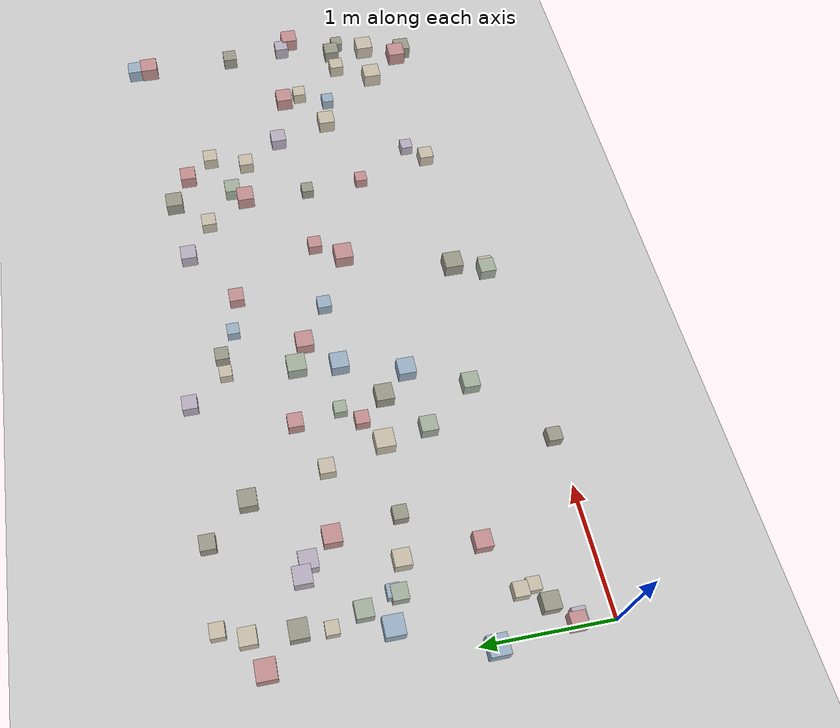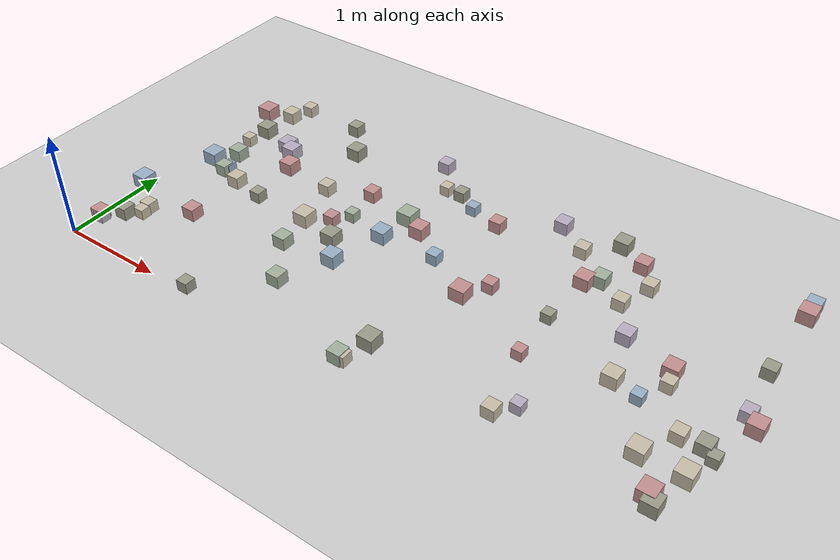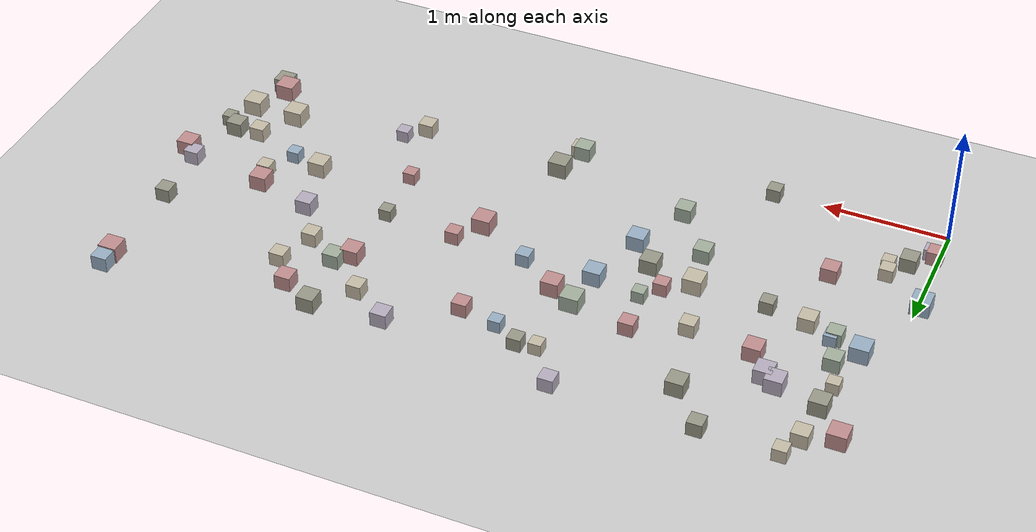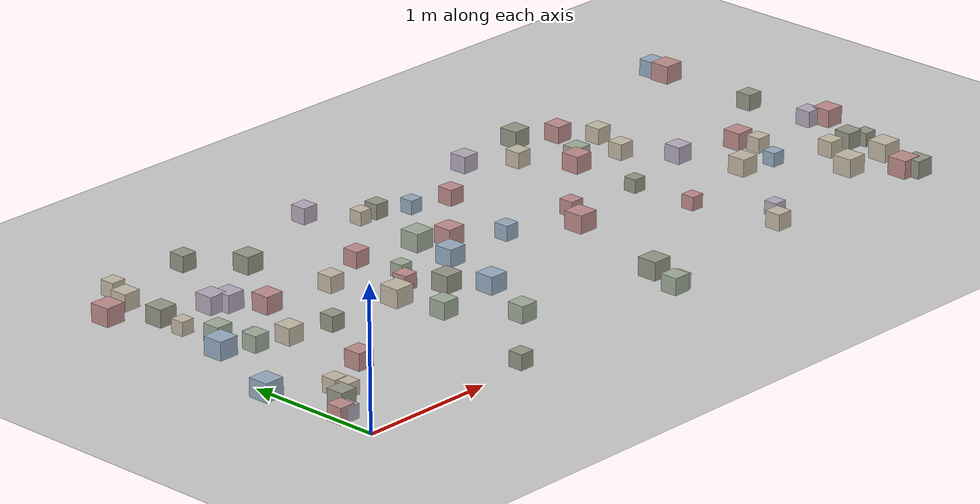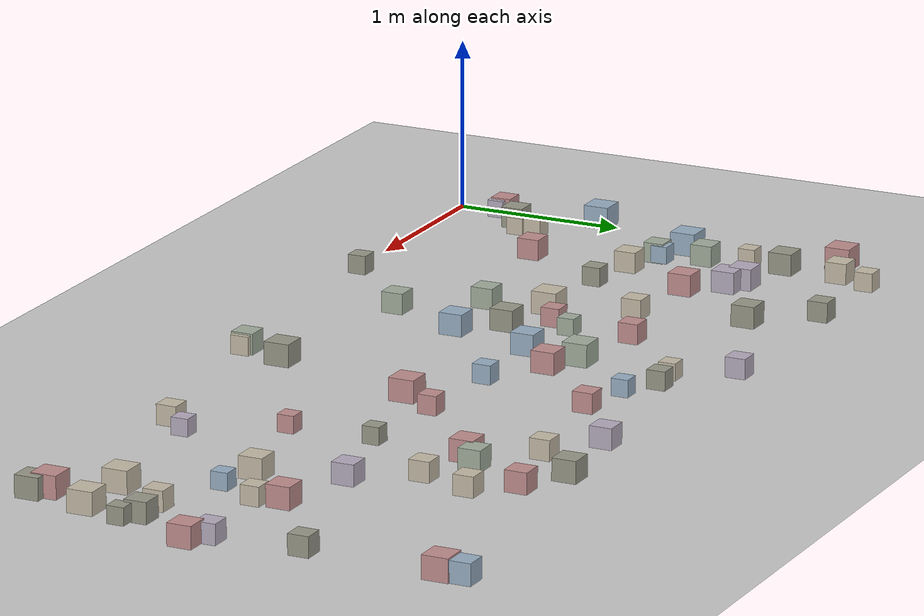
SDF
<sdf version="1.6">
 <world name="small_maze_world">
  <include><uri>model://ground_plane</uri></include>
  <include><uri>model://sun</uri></include>
  <model name="box_15">
   <static>false</static>
   <pose>1.01 1.33 0.05 0 0 0</pose>
   <link name="link">
    <inertial>
     <mass>0.2</mass>
     <inertia><ixx>0.001</ixx><iyy>0.001</iyy><izz>0.001</izz><ixy>0</ixy><ixz>0</ixz><iyz>0</iyz></inertia>
    </inertial>
    <collision name="collision"><geometry><box><size>0.11 0.11 0.11</size></box></geometry></collision>
    <visual name="visual">
     <geometry><box><size>0.11 0.11 0.11</size></box></geometry>
     <material><ambient>0.6 0.6 0.54 1</ambient><diffuse>0.6 0.6 0.54 1</diffuse></material>
    </visual>
   </link>
  </model>
  <model name="box_23">
   <static>false</static>
   <pose>5.8 1.43 0.05 0 0 0</pose>
   <link name="link">
    <inertial>
     <mass>0.2</mass>
     <inertia><ixx>0.001</ixx><iyy>0.001</iyy><izz>0.001</izz><ixy>0</ixy><ixz>0</ixz><iyz>0</iyz></inertia>
    </inertial>
    <collision name="collision"><geometry><box><size>0.12 0.12 0.12</size></box></geometry></collision>
    <visual name="visual">
     <geometry><box><size>0.12 0.12 0.12</size></box></geometry>
     <material><ambient>0.72 0.68 0.75 1</ambient><diffuse>0.72 0.68 0.75 1</diffuse></material>
    </visual>
   </link>
  </model>
  <model name="box_26">
   <static>false</static>
   <pose>0.79 2.05 0.05 0 0 0</pose>
   <link name="link">
    <inertial>
     <mass>0.2</mass>
     <inertia><ixx>0.001</ixx><iyy>0.001</iyy><izz>0.001</izz><ixy>0</ixy><ixz>0</ixz><iyz>0</iyz></inertia>
    </inertial>
    <collision name="collision"><geometry><box><size>0.14 0.14 0.14</size></box></geometry></collision>
    <visual name="visual">
     <geometry><box><size>0.14 0.14 0.14</size></box></geometry>
     <material><ambient>0.72 0.68 0.75 1</ambient><diffuse>0.72 0.68 0.75 1</diffuse></material>
    </visual>
   </link>
  </model>
  <model name="box_40">
   <static>false</static>
   <pose>3.47 1.52 0.05 0 0 0</pose>
   <link name="link">
    <inertial>
     <mass>0.2</mass>
     <inertia><ixx>0.001</ixx><iyy>0.001</iyy><izz>0.001</izz><ixy>0</ixy><ixz>0</ixz><iyz>0</iyz></inertia>
    </inertial>
    <collision name="collision"><geometry><box><size>0.11 0.11 0.11</size></box></geometry></collision>
    <visual name="visual">
     <geometry><box><size>0.11 0.11 0.11</size></box></geometry>
     <material><ambient>0.76 0.56 0.56 1</ambient><diffuse>0.76 0.56 0.56 1</diffuse></material>
    </visual>
   </link>
  </model>
  <model name="box_45">
   <static>false</static>
   <pose>1.32 2.41 0.05 0 0 0</pose>
   <link name="link">
    <inertial>
     <mass>0.2</mass>
     <inertia><ixx>0.001</ixx><iyy>0.001</iyy><izz>0.001</izz><ixy>0</ixy><ixz>0</ixz><iyz>0</iyz></inertia>
    </inertial>
    <collision name="collision"><geometry><box><size>0.14 0.14 0.14</size></box></geometry></collision>
    <visual name="visual">
     <geometry><box><size>0.14 0.14 0.14</size></box></geometry>
     <material><ambient>0.6 0.6 0.54 1</ambient><diffuse>0.6 0.6 0.54 1</diffuse></material>
    </visual>
   </link>
  </model>
  <model name="box_47">
   <static>false</static>
   <pose>0.35 2.55 0.05 0 0 0</pose>
   <link name="link">
    <inertial>
     <mass>0.2</mass>
     <inertia><ixx>0.001</ixx><iyy>0.001</iyy><izz>0.001</izz><ixy>0</ixy><ixz>0</ixz><iyz>0</iyz></inertia>
    </inertial>
    <collision name="collision"><geometry><box><size>0.13 0.13 0.13</size></box></geometry></collision>
    <visual name="visual">
     <geometry><box><size>0.13 0.13 0.13</size></box></geometry>
     <material><ambient>0.78 0.74 0.66 1</ambient><diffuse>0.78 0.74 0.66 1</diffuse></material>
    </visual>
   </link>
  </model>
  <model name="box_61">
   <static>false</static>
   <pose>5.53 0.35 0.05 0 0 0</pose>
   <link name="link">
    <inertial>
     <mass>0.2</mass>
     <inertia><ixx>0.001</ixx><iyy>0.001</iyy><izz>0.001</izz><ixy>0</ixy><ixz>0</ixz><iyz>0</iyz></inertia>
    </inertial>
    <collision name="collision"><geometry><box><size>0.15 0.15 0.15</size></box></geometry></collision>
    <visual name="visual">
     <geometry><box><size>0.15 0.15 0.15</size></box></geometry>
     <material><ambient>0.76 0.56 0.56 1</ambient><diffuse>0.76 0.56 0.56 1</diffuse></material>
    </visual>
   </link>
  </model>
  <model name="box_70">
   <static>false</static>
   <pose>1.97 1.24 0.05 0 0 0</pose>
   <link name="link">
    <inertial>
     <mass>0.2</mass>
     <inertia><ixx>0.001</ixx><iyy>0.001</iyy><izz>0.001</izz><ixy>0</ixy><ixz>0</ixz><iyz>0</iyz></inertia>
    </inertial>
    <collision name="collision"><geometry><box><size>0.14 0.14 0.14</size></box></geometry></collision>
    <visual name="visual">
     <geometry><box><size>0.14 0.14 0.14</size></box></geometry>
     <material><ambient>0.6 0.6 0.54 1</ambient><diffuse>0.6 0.6 0.54 1</diffuse></material>
    </visual>
   </link>
  </model>
  <model name="box_86">
   <static>false</static>
   <pose>1.87 1.96 0.05 0 0 0</pose>
   <link name="link">
    <inertial>
     <mass>0.2</mass>
     <inertia><ixx>0.001</ixx><iyy>0.001</iyy><izz>0.001</izz><ixy>0</ixy><ixz>0</ixz><iyz>0</iyz></inertia>
    </inertial>
    <collision name="collision"><geometry><box><size>0.12 0.12 0.12</size></box></geometry></collision>
    <visual name="visual">
     <geometry><box><size>0.12 0.12 0.12</size></box></geometry>
     <material><ambient>0.76 0.56 0.56 1</ambient><diffuse>0.76 0.56 0.56 1</diffuse></material>
    </visual>
   </link>
  </model>
  <model name="box_91">
   <static>false</static>
   <pose>1.65 0.96 0.05 0 0 0</pose>
   <link name="link">
    <inertial>
     <mass>0.2</mass>
     <inertia><ixx>0.001</ixx><iyy>0.001</iyy><izz>0.001</izz><ixy>0</ixy><ixz>0</ixz><iyz>0</iyz></inertia>
    </inertial>
    <collision name="collision"><geometry><box><size>0.13 0.13 0.13</size></box></geometry></collision>
    <visual name="visual">
     <geometry><box><size>0.13 0.13 0.13</size></box></geometry>
     <material><ambient>0.64 0.69 0.62 1</ambient><diffuse>0.64 0.69 0.62 1</diffuse></material>
    </visual>
   </link>
  </model>
  <model name="box_101">
   <static>false</static>
   <pose>0.3 1.97 0.05 0 0 0</pose>
   <link name="link">
    <inertial>
     <mass>0.2</mass>
     <inertia><ixx>0.001</ixx><iyy>0.001</iyy><izz>0.001</izz><ixy>0</ixy><ixz>0</ixz><iyz>0</iyz></inertia>
    </inertial>
    <collision name="collision"><geometry><box><size>0.1 0.1 0.1</size></box></geometry></collision>
    <visual name="visual">
     <geometry><box><size>0.1 0.1 0.1</size></box></geometry>
     <material><ambient>0.78 0.74 0.66 1</ambient><diffuse>0.78 0.74 0.66 1</diffuse></material>
    </visual>
   </link>
  </model>
  <model name="box_103">
   <static>false</static>
   <pose>4.08 2.03 0.05 0 0 0</pose>
   <link name="link">
    <inertial>
     <mass>0.2</mass>
     <inertia><ixx>0.001</ixx><iyy>0.001</iyy><izz>0.001</izz><ixy>0</ixy><ixz>0</ixz><iyz>0</iyz></inertia>
    </inertial>
    <collision name="collision"><geometry><box><size>0.14 0.14 0.14</size></box></geometry></collision>
    <visual name="visual">
     <geometry><box><size>0.14 0.14 0.14</size></box></geometry>
     <material><ambient>0.76 0.56 0.56 1</ambient><diffuse>0.76 0.56 0.56 1</diffuse></material>
    </visual>
   </link>
  </model>
  <model name="box_106">
   <static>false</static>
   <pose>3.0 0.14 0.05 0 0 0</pose>
   <link name="link">
    <inertial>
     <mass>0.2</mass>
     <inertia><ixx>0.001</ixx><iyy>0.001</iyy><izz>0.001</izz><ixy>0</ixy><ixz>0</ixz><iyz>0</iyz></inertia>
    </inertial>
    <collision name="collision"><geometry><box><size>0.11 0.11 0.11</size></box></geometry></collision>
    <visual name="visual">
     <geometry><box><size>0.11 0.11 0.11</size></box></geometry>
     <material><ambient>0.78 0.74 0.66 1</ambient><diffuse>0.78 0.74 0.66 1</diffuse></material>
    </visual>
   </link>
  </model>
  <model name="box_107">
   <static>false</static>
   <pose>2.35 1.87 0.05 0 0 0</pose>
   <link name="link">
    <inertial>
     <mass>0.2</mass>
     <inertia><ixx>0.001</ixx><iyy>0.001</iyy><izz>0.001</izz><ixy>0</ixy><ixz>0</ixz><iyz>0</iyz></inertia>
    </inertial>
    <collision name="collision"><geometry><box><size>0.15 0.15 0.15</size></box></geometry></collision>
    <visual name="visual">
     <geometry><box><size>0.15 0.15 0.15</size></box></geometry>
     <material><ambient>0.64 0.69 0.62 1</ambient><diffuse>0.64 0.69 0.62 1</diffuse></material>
    </visual>
   </link>
  </model>
  <model name="box_110">
   <static>false</static>
   <pose>0.94 1.85 0.05 0 0 0</pose>
   <link name="link">
    <inertial>
     <mass>0.2</mass>
     <inertia><ixx>0.001</ixx><iyy>0.001</iyy><izz>0.001</izz><ixy>0</ixy><ixz>0</ixz><iyz>0</iyz></inertia>
    </inertial>
    <collision name="collision"><geometry><box><size>0.14 0.14 0.14</size></box></geometry></collision>
    <visual name="visual">
     <geometry><box><size>0.14 0.14 0.14</size></box></geometry>
     <material><ambient>0.76 0.56 0.56 1</ambient><diffuse>0.76 0.56 0.56 1</diffuse></material>
    </visual>
   </link>
  </model>
  <model name="box_115">
   <static>false</static>
   <pose>0.38 1.73 0.05 0 0 0</pose>
   <link name="link">
    <inertial>
     <mass>0.2</mass>
     <inertia><ixx>0.001</ixx><iyy>0.001</iyy><izz>0.001</izz><ixy>0</ixy><ixz>0</ixz><iyz>0</iyz></inertia>
    </inertial>
    <collision name="collision"><geometry><box><size>0.13 0.13 0.13</size></box></geometry></collision>
    <visual name="visual">
     <geometry><box><size>0.13 0.13 0.13</size></box></geometry>
     <material><ambient>0.64 0.69 0.62 1</ambient><diffuse>0.64 0.69 0.62 1</diffuse></material>
    </visual>
   </link>
  </model>
  <model name="box_125">
   <static>false</static>
   <pose>5.3 0.64 0.05 0 0 0</pose>
   <link name="link">
    <inertial>
     <mass>0.2</mass>
     <inertia><ixx>0.001</ixx><iyy>0.001</iyy><izz>0.001</izz><ixy>0</ixy><ixz>0</ixz><iyz>0</iyz></inertia>
    </inertial>
    <collision name="collision"><geometry><box><size>0.15 0.15 0.15</size></box></geometry></collision>
    <visual name="visual">
     <geometry><box><size>0.15 0.15 0.15</size></box></geometry>
     <material><ambient>0.78 0.74 0.66 1</ambient><diffuse>0.78 0.74 0.66 1</diffuse></material>
    </visual>
   </link>
  </model>
  <model name="box_128">
   <static>false</static>
   <pose>1.39 0.04 0.05 0 0 0</pose>
   <link name="link">
    <inertial>
     <mass>0.2</mass>
     <inertia><ixx>0.001</ixx><iyy>0.001</iyy><izz>0.001</izz><ixy>0</ixy><ixz>0</ixz><iyz>0</iyz></inertia>
    </inertial>
    <collision name="collision"><geometry><box><size>0.11 0.11 0.11</size></box></geometry></collision>
    <visual name="visual">
     <geometry><box><size>0.11 0.11 0.11</size></box></geometry>
     <material><ambient>0.6 0.6 0.54 1</ambient><diffuse>0.6 0.6 0.54 1</diffuse></material>
    </visual>
   </link>
  </model>
  <model name="box_129">
   <static>false</static>
   <pose>5.19 1.36 0.05 0 0 0</pose>
   <link name="link">
    <inertial>
     <mass>0.2</mass>
     <inertia><ixx>0.001</ixx><iyy>0.001</iyy><izz>0.001</izz><ixy>0</ixy><ixz>0</ixz><iyz>0</iyz></inertia>
    </inertial>
    <collision name="collision"><geometry><box><size>0.11 0.11 0.11</size></box></geometry></collision>
    <visual name="visual">
     <geometry><box><size>0.11 0.11 0.11</size></box></geometry>
     <material><ambient>0.78 0.74 0.66 1</ambient><diffuse>0.78 0.74 0.66 1</diffuse></material>
    </visual>
   </link>
  </model>
  <model name="box_136">
   <static>false</static>
   <pose>5.77 2.72 0.05 0 0 0</pose>
   <link name="link">
    <inertial>
     <mass>0.2</mass>
     <inertia><ixx>0.001</ixx><iyy>0.001</iyy><izz>0.001</izz><ixy>0</ixy><ixz>0</ixz><iyz>0</iyz></inertia>
    </inertial>
    <collision name="collision"><geometry><box><size>0.15 0.15 0.15</size></box></geometry></collision>
    <visual name="visual">
     <geometry><box><size>0.15 0.15 0.15</size></box></geometry>
     <material><ambient>0.76 0.56 0.56 1</ambient><diffuse>0.76 0.56 0.56 1</diffuse></material>
    </visual>
   </link>
  </model>
  <model name="box_151">
   <static>false</static>
   <pose>1.92 1.6 0.05 0 0 0</pose>
   <link name="link">
    <inertial>
     <mass>0.2</mass>
     <inertia><ixx>0.001</ixx><iyy>0.001</iyy><izz>0.001</izz><ixy>0</ixy><ixz>0</ixz><iyz>0</iyz></inertia>
    </inertial>
    <collision name="collision"><geometry><box><size>0.1 0.1 0.1</size></box></geometry></collision>
    <visual name="visual">
     <geometry><box><size>0.1 0.1 0.1</size></box></geometry>
     <material><ambient>0.64 0.69 0.62 1</ambient><diffuse>0.64 0.69 0.62 1</diffuse></material>
    </visual>
   </link>
  </model>
  <model name="box_153">
   <static>false</static>
   <pose>0.7 0.79 0.05 0 0 0</pose>
   <link name="link">
    <inertial>
     <mass>0.2</mass>
     <inertia><ixx>0.001</ixx><iyy>0.001</iyy><izz>0.001</izz><ixy>0</ixy><ixz>0</ixz><iyz>0</iyz></inertia>
    </inertial>
    <collision name="collision"><geometry><box><size>0.13 0.13 0.13</size></box></geometry></collision>
    <visual name="visual">
     <geometry><box><size>0.13 0.13 0.13</size></box></geometry>
     <material><ambient>0.76 0.56 0.56 1</ambient><diffuse>0.76 0.56 0.56 1</diffuse></material>
    </visual>
   </link>
  </model>
  <model name="box_156">
   <static>false</static>
   <pose>2.16 1.02 0.05 0 0 0</pose>
   <link name="link">
    <inertial>
     <mass>0.2</mass>
     <inertia><ixx>0.001</ixx><iyy>0.001</iyy><izz>0.001</izz><ixy>0</ixy><ixz>0</ixz><iyz>0</iyz></inertia>
    </inertial>
    <collision name="collision"><geometry><box><size>0.14 0.14 0.14</size></box></geometry></collision>
    <visual name="visual">
     <geometry><box><size>0.14 0.14 0.14</size></box></geometry>
     <material><ambient>0.6 0.69 0.77 1</ambient><diffuse>0.6 0.69 0.77 1</diffuse></material>
    </visual>
   </link>
  </model>
  <model name="box_161">
   <static>false</static>
   <pose>3.32 1.3 0.05 0 0 0</pose>
   <link name="link">
    <inertial>
     <mass>0.2</mass>
     <inertia><ixx>0.001</ixx><iyy>0.001</iyy><izz>0.001</izz><ixy>0</ixy><ixz>0</ixz><iyz>0</iyz></inertia>
    </inertial>
    <collision name="collision"><geometry><box><size>0.15 0.15 0.15</size></box></geometry></collision>
    <visual name="visual">
     <geometry><box><size>0.15 0.15 0.15</size></box></geometry>
     <material><ambient>0.76 0.56 0.56 1</ambient><diffuse>0.76 0.56 0.56 1</diffuse></material>
    </visual>
   </link>
  </model>
  <model name="box_165">
   <static>false</static>
   <pose>-0.03 0.88 0.05 0 0 0</pose>
   <link name="link">
    <inertial>
     <mass>0.2</mass>
     <inertia><ixx>0.001</ixx><iyy>0.001</iyy><izz>0.001</izz><ixy>0</ixy><ixz>0</ixz><iyz>0</iyz></inertia>
    </inertial>
    <collision name="collision"><geometry><box><size>0.15 0.15 0.15</size></box></geometry></collision>
    <visual name="visual">
     <geometry><box><size>0.15 0.15 0.15</size></box></geometry>
     <material><ambient>0.6 0.69 0.77 1</ambient><diffuse>0.6 0.69 0.77 1</diffuse></material>
    </visual>
   </link>
  </model>
  <model name="box_184">
   <static>false</static>
   <pose>1.8 1.45 0.05 0 0 0</pose>
   <link name="link">
    <inertial>
     <mass>0.2</mass>
     <inertia><ixx>0.001</ixx><iyy>0.001</iyy><izz>0.001</izz><ixy>0</ixy><ixz>0</ixz><iyz>0</iyz></inertia>
    </inertial>
    <collision name="collision"><geometry><box><size>0.11 0.11 0.11</size></box></geometry></collision>
    <visual name="visual">
     <geometry><box><size>0.11 0.11 0.11</size></box></geometry>
     <material><ambient>0.76 0.56 0.56 1</ambient><diffuse>0.76 0.56 0.56 1</diffuse></material>
    </visual>
   </link>
  </model>
  <model name="box_195">
   <static>false</static>
   <pose>5.76 1.94 0.05 0 0 0</pose>
   <link name="link">
    <inertial>
     <mass>0.2</mass>
     <inertia><ixx>0.001</ixx><iyy>0.001</iyy><izz>0.001</izz><ixy>0</ixy><ixz>0</ixz><iyz>0</iyz></inertia>
    </inertial>
    <collision name="collision"><geometry><box><size>0.12 0.12 0.12</size></box></geometry></collision>
    <visual name="visual">
     <geometry><box><size>0.12 0.12 0.12</size></box></geometry>
     <material><ambient>0.6 0.6 0.54 1</ambient><diffuse>0.6 0.6 0.54 1</diffuse></material>
    </visual>
   </link>
  </model>
  <model name="box_198">
   <static>false</static>
   <pose>0.33 0.52 0.05 0 0 0</pose>
   <link name="link">
    <inertial>
     <mass>0.2</mass>
     <inertia><ixx>0.001</ixx><iyy>0.001</iyy><izz>0.001</izz><ixy>0</ixy><ixz>0</ixz><iyz>0</iyz></inertia>
    </inertial>
    <collision name="collision"><geometry><box><size>0.1 0.1 0.1</size></box></geometry></collision>
    <visual name="visual">
     <geometry><box><size>0.1 0.1 0.1</size></box></geometry>
     <material><ambient>0.78 0.74 0.66 1</ambient><diffuse>0.78 0.74 0.66 1</diffuse></material>
    </visual>
   </link>
  </model>
  <model name="box_199">
   <static>false</static>
   <pose>2.76 2.32 0.05 0 0 0</pose>
   <link name="link">
    <inertial>
     <mass>0.2</mass>
     <inertia><ixx>0.001</ixx><iyy>0.001</iyy><izz>0.001</izz><ixy>0</ixy><ixz>0</ixz><iyz>0</iyz></inertia>
    </inertial>
    <collision name="collision"><geometry><box><size>0.1 0.1 0.1</size></box></geometry></collision>
    <visual name="visual">
     <geometry><box><size>0.1 0.1 0.1</size></box></geometry>
     <material><ambient>0.6 0.69 0.77 1</ambient><diffuse>0.6 0.69 0.77 1</diffuse></material>
    </visual>
   </link>
  </model>
  <model name="box_200">
   <static>false</static>
   <pose>5.77 2.85 0.05 0 0 0</pose>
   <link name="link">
    <inertial>
     <mass>0.2</mass>
     <inertia><ixx>0.001</ixx><iyy>0.001</iyy><izz>0.001</izz><ixy>0</ixy><ixz>0</ixz><iyz>0</iyz></inertia>
    </inertial>
    <collision name="collision"><geometry><box><size>0.13 0.13 0.13</size></box></geometry></collision>
    <visual name="visual">
     <geometry><box><size>0.13 0.13 0.13</size></box></geometry>
     <material><ambient>0.6 0.69 0.77 1</ambient><diffuse>0.6 0.69 0.77 1</diffuse></material>
    </visual>
   </link>
  </model>
  <model name="box_201">
   <static>false</static>
   <pose>2.31 1.53 0.05 0 0 0</pose>
   <link name="link">
    <inertial>
     <mass>0.2</mass>
     <inertia><ixx>0.001</ixx><iyy>0.001</iyy><izz>0.001</izz><ixy>0</ixy><ixz>0</ixz><iyz>0</iyz></inertia>
    </inertial>
    <collision name="collision"><geometry><box><size>0.14 0.14 0.14</size></box></geometry></collision>
    <visual name="visual">
     <geometry><box><size>0.14 0.14 0.14</size></box></geometry>
     <material><ambient>0.6 0.69 0.77 1</ambient><diffuse>0.6 0.69 0.77 1</diffuse></material>
    </visual>
   </link>
  </model>
  <model name="box_209">
   <static>false</static>
   <pose>2.39 2.43 0.05 0 0 0</pose>
   <link name="link">
    <inertial>
     <mass>0.2</mass>
     <inertia><ixx>0.001</ixx><iyy>0.001</iyy><izz>0.001</izz><ixy>0</ixy><ixz>0</ixz><iyz>0</iyz></inertia>
    </inertial>
    <collision name="collision"><geometry><box><size>0.1 0.1 0.1</size></box></geometry></collision>
    <visual name="visual">
     <geometry><box><size>0.1 0.1 0.1</size></box></geometry>
     <material><ambient>0.78 0.74 0.66 1</ambient><diffuse>0.78 0.74 0.66 1</diffuse></material>
    </visual>
   </link>
  </model>
  <model name="box_212">
   <static>false</static>
   <pose>1.59 1.32 0.05 0 0 0</pose>
   <link name="link">
    <inertial>
     <mass>0.2</mass>
     <inertia><ixx>0.001</ixx><iyy>0.001</iyy><izz>0.001</izz><ixy>0</ixy><ixz>0</ixz><iyz>0</iyz></inertia>
    </inertial>
    <collision name="collision"><geometry><box><size>0.15 0.15 0.15</size></box></geometry></collision>
    <visual name="visual">
     <geometry><box><size>0.15 0.15 0.15</size></box></geometry>
     <material><ambient>0.78 0.74 0.66 1</ambient><diffuse>0.78 0.74 0.66 1</diffuse></material>
    </visual>
   </link>
  </model>
  <model name="box_213">
   <static>false</static>
   <pose>2.87 1.55 0.05 0 0 0</pose>
   <link name="link">
    <inertial>
     <mass>0.2</mass>
     <inertia><ixx>0.001</ixx><iyy>0.001</iyy><izz>0.001</izz><ixy>0</ixy><ixz>0</ixz><iyz>0</iyz></inertia>
    </inertial>
    <collision name="collision"><geometry><box><size>0.11 0.11 0.11</size></box></geometry></collision>
    <visual name="visual">
     <geometry><box><size>0.11 0.11 0.11</size></box></geometry>
     <material><ambient>0.6 0.69 0.77 1</ambient><diffuse>0.6 0.69 0.77 1</diffuse></material>
    </visual>
   </link>
  </model>
  <model name="box_214">
   <static>false</static>
   <pose>5.47 0.95 0.05 0 0 0</pose>
   <link name="link">
    <inertial>
     <mass>0.2</mass>
     <inertia><ixx>0.001</ixx><iyy>0.001</iyy><izz>0.001</izz><ixy>0</ixy><ixz>0</ixz><iyz>0</iyz></inertia>
    </inertial>
    <collision name="collision"><geometry><box><size>0.12 0.12 0.12</size></box></geometry></collision>
    <visual name="visual">
     <geometry><box><size>0.12 0.12 0.12</size></box></geometry>
     <material><ambient>0.78 0.74 0.66 1</ambient><diffuse>0.78 0.74 0.66 1</diffuse></material>
    </visual>
   </link>
  </model>
  <model name="box_217">
   <static>false</static>
   <pose>1.05 2.74 0.05 0 0 0</pose>
   <link name="link">
    <inertial>
     <mass>0.2</mass>
     <inertia><ixx>0.001</ixx><iyy>0.001</iyy><izz>0.001</izz><ixy>0</ixy><ixz>0</ixz><iyz>0</iyz></inertia>
    </inertial>
    <collision name="collision"><geometry><box><size>0.12 0.12 0.12</size></box></geometry></collision>
    <visual name="visual">
     <geometry><box><size>0.12 0.12 0.12</size></box></geometry>
     <material><ambient>0.6 0.6 0.54 1</ambient><diffuse>0.6 0.6 0.54 1</diffuse></material>
    </visual>
   </link>
  </model>
  <model name="box_221">
   <static>false</static>
   <pose>4.81 1.17 0.05 0 0 0</pose>
   <link name="link">
    <inertial>
     <mass>0.2</mass>
     <inertia><ixx>0.001</ixx><iyy>0.001</iyy><izz>0.001</izz><ixy>0</ixy><ixz>0</ixz><iyz>0</iyz></inertia>
    </inertial>
    <collision name="collision"><geometry><box><size>0.14 0.14 0.14</size></box></geometry></collision>
    <visual name="visual">
     <geometry><box><size>0.14 0.14 0.14</size></box></geometry>
     <material><ambient>0.78 0.74 0.66 1</ambient><diffuse>0.78 0.74 0.66 1</diffuse></material>
    </visual>
   </link>
  </model>
  <model name="box_232">
   <static>false</static>
   <pose>0.03 0.29 0.05 0 0 0</pose>
   <link name="link">
    <inertial>
     <mass>0.2</mass>
     <inertia><ixx>0.001</ixx><iyy>0.001</iyy><izz>0.001</izz><ixy>0</ixy><ixz>0</ixz><iyz>0</iyz></inertia>
    </inertial>
    <collision name="collision"><geometry><box><size>0.12 0.12 0.12</size></box></geometry></collision>
    <visual name="visual">
     <geometry><box><size>0.12 0.12 0.12</size></box></geometry>
     <material><ambient>0.76 0.56 0.56 1</ambient><diffuse>0.76 0.56 0.56 1</diffuse></material>
    </visual>
   </link>
  </model>
  <model name="box_234">
   <static>false</static>
   <pose>2.55 2.44 0.05 0 0 0</pose>
   <link name="link">
    <inertial>
     <mass>0.2</mass>
     <inertia><ixx>0.001</ixx><iyy>0.001</iyy><izz>0.001</izz><ixy>0</ixy><ixz>0</ixz><iyz>0</iyz></inertia>
    </inertial>
    <collision name="collision"><geometry><box><size>0.11 0.11 0.11</size></box></geometry></collision>
    <visual name="visual">
     <geometry><box><size>0.11 0.11 0.11</size></box></geometry>
     <material><ambient>0.6 0.6 0.54 1</ambient><diffuse>0.6 0.6 0.54 1</diffuse></material>
    </visual>
   </link>
  </model>
  <model name="box_249">
   <static>false</static>
   <pose>2.55 1.77 0.05 0 0 0</pose>
   <link name="link">
    <inertial>
     <mass>0.2</mass>
     <inertia><ixx>0.001</ixx><iyy>0.001</iyy><izz>0.001</izz><ixy>0</ixy><ixz>0</ixz><iyz>0</iyz></inertia>
    </inertial>
    <collision name="collision"><geometry><box><size>0.14 0.14 0.14</size></box></geometry></collision>
    <visual name="visual">
     <geometry><box><size>0.14 0.14 0.14</size></box></geometry>
     <material><ambient>0.76 0.56 0.56 1</ambient><diffuse>0.76 0.56 0.56 1</diffuse></material>
    </visual>
   </link>
  </model>
  <model name="box_268">
   <static>false</static>
   <pose>5.06 1.11 0.05 0 0 0</pose>
   <link name="link">
    <inertial>
     <mass>0.2</mass>
     <inertia><ixx>0.001</ixx><iyy>0.001</iyy><izz>0.001</izz><ixy>0</ixy><ixz>0</ixz><iyz>0</iyz></inertia>
    </inertial>
    <collision name="collision"><geometry><box><size>0.1 0.1 0.1</size></box></geometry></collision>
    <visual name="visual">
     <geometry><box><size>0.1 0.1 0.1</size></box></geometry>
     <material><ambient>0.6 0.69 0.77 1</ambient><diffuse>0.6 0.69 0.77 1</diffuse></material>
    </visual>
   </link>
  </model>
  <model name="box_278">
   <static>false</static>
   <pose>4.09 0.99 0.05 0 0 0</pose>
   <link name="link">
    <inertial>
     <mass>0.2</mass>
     <inertia><ixx>0.001</ixx><iyy>0.001</iyy><izz>0.001</izz><ixy>0</ixy><ixz>0</ixz><iyz>0</iyz></inertia>
    </inertial>
    <collision name="collision"><geometry><box><size>0.1 0.1 0.1</size></box></geometry></collision>
    <visual name="visual">
     <geometry><box><size>0.1 0.1 0.1</size></box></geometry>
     <material><ambient>0.76 0.56 0.56 1</ambient><diffuse>0.76 0.56 0.56 1</diffuse></material>
    </visual>
   </link>
  </model>
  <model name="box_282">
   <static>false</static>
   <pose>4.13 2.65 0.05 0 0 0</pose>
   <link name="link">
    <inertial>
     <mass>0.2</mass>
     <inertia><ixx>0.001</ixx><iyy>0.001</iyy><izz>0.001</izz><ixy>0</ixy><ixz>0</ixz><iyz>0</iyz></inertia>
    </inertial>
    <collision name="collision"><geometry><box><size>0.14 0.14 0.14</size></box></geometry></collision>
    <visual name="visual">
     <geometry><box><size>0.14 0.14 0.14</size></box></geometry>
     <material><ambient>0.6 0.6 0.54 1</ambient><diffuse>0.6 0.6 0.54 1</diffuse></material>
    </visual>
   </link>
  </model>
  <model name="box_286">
   <static>false</static>
   <pose>5.67 0.96 0.05 0 0 0</pose>
   <link name="link">
    <inertial>
     <mass>0.2</mass>
     <inertia><ixx>0.001</ixx><iyy>0.001</iyy><izz>0.001</izz><ixy>0</ixy><ixz>0</ixz><iyz>0</iyz></inertia>
    </inertial>
    <collision name="collision"><geometry><box><size>0.13 0.13 0.13</size></box></geometry></collision>
    <visual name="visual">
     <geometry><box><size>0.13 0.13 0.13</size></box></geometry>
     <material><ambient>0.6 0.6 0.54 1</ambient><diffuse>0.6 0.6 0.54 1</diffuse></material>
    </visual>
   </link>
  </model>
  <model name="box_300">
   <static>false</static>
   <pose>4.24 0.36 0.05 0 0 0</pose>
   <link name="link">
    <inertial>
     <mass>0.2</mass>
     <inertia><ixx>0.001</ixx><iyy>0.001</iyy><izz>0.001</izz><ixy>0</ixy><ixz>0</ixz><iyz>0</iyz></inertia>
    </inertial>
    <collision name="collision"><geometry><box><size>0.12 0.12 0.12</size></box></geometry></collision>
    <visual name="visual">
     <geometry><box><size>0.12 0.12 0.12</size></box></geometry>
     <material><ambient>0.78 0.74 0.66 1</ambient><diffuse>0.78 0.74 0.66 1</diffuse></material>
    </visual>
   </link>
  </model>
  <model name="box_313">
   <static>false</static>
   <pose>4.19 2.13 0.05 0 0 0</pose>
   <link name="link">
    <inertial>
     <mass>0.2</mass>
     <inertia><ixx>0.001</ixx><iyy>0.001</iyy><izz>0.001</izz><ixy>0</ixy><ixz>0</ixz><iyz>0</iyz></inertia>
    </inertial>
    <collision name="collision"><geometry><box><size>0.13 0.13 0.13</size></box></geometry></collision>
    <visual name="visual">
     <geometry><box><size>0.13 0.13 0.13</size></box></geometry>
     <material><ambient>0.64 0.69 0.62 1</ambient><diffuse>0.64 0.69 0.62 1</diffuse></material>
    </visual>
   </link>
  </model>
  <model name="box_319">
   <static>false</static>
   <pose>0.31 0.62 0.05 0 0 0</pose>
   <link name="link">
    <inertial>
     <mass>0.2</mass>
     <inertia><ixx>0.001</ixx><iyy>0.001</iyy><izz>0.001</izz><ixy>0</ixy><ixz>0</ixz><iyz>0</iyz></inertia>
    </inertial>
    <collision name="collision"><geometry><box><size>0.11 0.11 0.11</size></box></geometry></collision>
    <visual name="visual">
     <geometry><box><size>0.11 0.11 0.11</size></box></geometry>
     <material><ambient>0.78 0.74 0.66 1</ambient><diffuse>0.78 0.74 0.66 1</diffuse></material>
    </visual>
   </link>
  </model>
  <model name="box_322">
   <static>false</static>
   <pose>4.68 1.64 0.05 0 0 0</pose>
   <link name="link">
    <inertial>
     <mass>0.2</mass>
     <inertia><ixx>0.001</ixx><iyy>0.001</iyy><izz>0.001</izz><ixy>0</ixy><ixz>0</ixz><iyz>0</iyz></inertia>
    </inertial>
    <collision name="collision"><geometry><box><size>0.13 0.13 0.13</size></box></geometry></collision>
    <visual name="visual">
     <geometry><box><size>0.13 0.13 0.13</size></box></geometry>
     <material><ambient>0.72 0.68 0.75 1</ambient><diffuse>0.72 0.68 0.75 1</diffuse></material>
    </visual>
   </link>
  </model>
  <model name="box_325">
   <static>false</static>
   <pose>4.4 2.5 0.05 0 0 0</pose>
   <link name="link">
    <inertial>
     <mass>0.2</mass>
     <inertia><ixx>0.001</ixx><iyy>0.001</iyy><izz>0.001</izz><ixy>0</ixy><ixz>0</ixz><iyz>0</iyz></inertia>
    </inertial>
    <collision name="collision"><geometry><box><size>0.13 0.13 0.13</size></box></geometry></collision>
    <visual name="visual">
     <geometry><box><size>0.13 0.13 0.13</size></box></geometry>
     <material><ambient>0.76 0.56 0.56 1</ambient><diffuse>0.76 0.56 0.56 1</diffuse></material>
    </visual>
   </link>
  </model>
  <model name="box_331">
   <static>false</static>
   <pose>0.47 1.5 0.05 0 0 0</pose>
   <link name="link">
    <inertial>
     <mass>0.2</mass>
     <inertia><ixx>0.001</ixx><iyy>0.001</iyy><izz>0.001</izz><ixy>0</ixy><ixz>0</ixz><iyz>0</iyz></inertia>
    </inertial>
    <collision name="collision"><geometry><box><size>0.1 0.1 0.1</size></box></geometry></collision>
    <visual name="visual">
     <geometry><box><size>0.1 0.1 0.1</size></box></geometry>
     <material><ambient>0.6 0.69 0.77 1</ambient><diffuse>0.6 0.69 0.77 1</diffuse></material>
    </visual>
   </link>
  </model>
  <model name="box_333">
   <static>false</static>
   <pose>0.69 2.11 0.05 0 0 0</pose>
   <link name="link">
    <inertial>
     <mass>0.2</mass>
     <inertia><ixx>0.001</ixx><iyy>0.001</iyy><izz>0.001</izz><ixy>0</ixy><ixz>0</ixz><iyz>0</iyz></inertia>
    </inertial>
    <collision name="collision"><geometry><box><size>0.14 0.14 0.14</size></box></geometry></collision>
    <visual name="visual">
     <geometry><box><size>0.14 0.14 0.14</size></box></geometry>
     <material><ambient>0.72 0.68 0.75 1</ambient><diffuse>0.72 0.68 0.75 1</diffuse></material>
    </visual>
   </link>
  </model>
  <model name="box_336">
   <static>false</static>
   <pose>0.33 2.2 0.05 0 0 0</pose>
   <link name="link">
    <inertial>
     <mass>0.2</mass>
     <inertia><ixx>0.001</ixx><iyy>0.001</iyy><izz>0.001</izz><ixy>0</ixy><ixz>0</ixz><iyz>0</iyz></inertia>
    </inertial>
    <collision name="collision"><geometry><box><size>0.14 0.14 0.14</size></box></geometry></collision>
    <visual name="visual">
     <geometry><box><size>0.14 0.14 0.14</size></box></geometry>
     <material><ambient>0.6 0.6 0.54 1</ambient><diffuse>0.6 0.6 0.54 1</diffuse></material>
    </visual>
   </link>
  </model>
  <model name="box_338">
   <static>false</static>
   <pose>5.77 0.89 0.05 0 0 0</pose>
   <link name="link">
    <inertial>
     <mass>0.2</mass>
     <inertia><ixx>0.001</ixx><iyy>0.001</iyy><izz>0.001</izz><ixy>0</ixy><ixz>0</ixz><iyz>0</iyz></inertia>
    </inertial>
    <collision name="collision"><geometry><box><size>0.1 0.1 0.1</size></box></geometry></collision>
    <visual name="visual">
     <geometry><box><size>0.1 0.1 0.1</size></box></geometry>
     <material><ambient>0.6 0.6 0.54 1</ambient><diffuse>0.6 0.6 0.54 1</diffuse></material>
    </visual>
   </link>
  </model>
  <model name="box_340">
   <static>false</static>
   <pose>0.45 1.46 0.05 0 0 0</pose>
   <link name="link">
    <inertial>
     <mass>0.2</mass>
     <inertia><ixx>0.001</ixx><iyy>0.001</iyy><izz>0.001</izz><ixy>0</ixy><ixz>0</ixz><iyz>0</iyz></inertia>
    </inertial>
    <collision name="collision"><geometry><box><size>0.12 0.12 0.12</size></box></geometry></collision>
    <visual name="visual">
     <geometry><box><size>0.12 0.12 0.12</size></box></geometry>
     <material><ambient>0.64 0.69 0.62 1</ambient><diffuse>0.64 0.69 0.62 1</diffuse></material>
    </visual>
   </link>
  </model>
  <model name="box_351">
   <static>false</static>
   <pose>4.57 2.28 0.05 0 0 0</pose>
   <link name="link">
    <inertial>
     <mass>0.2</mass>
     <inertia><ixx>0.001</ixx><iyy>0.001</iyy><izz>0.001</izz><ixy>0</ixy><ixz>0</ixz><iyz>0</iyz></inertia>
    </inertial>
    <collision name="collision"><geometry><box><size>0.12 0.12 0.12</size></box></geometry></collision>
    <visual name="visual">
     <geometry><box><size>0.12 0.12 0.12</size></box></geometry>
     <material><ambient>0.78 0.74 0.66 1</ambient><diffuse>0.78 0.74 0.66 1</diffuse></material>
    </visual>
   </link>
  </model>
  <model name="box_352">
   <static>false</static>
   <pose>0.43 2.75 0.05 0 0 0</pose>
   <link name="link">
    <inertial>
     <mass>0.2</mass>
     <inertia><ixx>0.001</ixx><iyy>0.001</iyy><izz>0.001</izz><ixy>0</ixy><ixz>0</ixz><iyz>0</iyz></inertia>
    </inertial>
    <collision name="collision"><geometry><box><size>0.11 0.11 0.11</size></box></geometry></collision>
    <visual name="visual">
     <geometry><box><size>0.11 0.11 0.11</size></box></geometry>
     <material><ambient>0.78 0.74 0.66 1</ambient><diffuse>0.78 0.74 0.66 1</diffuse></material>
    </visual>
   </link>
  </model>
  <model name="box_358">
   <static>false</static>
   <pose>0.23 1.55 0.05 0 0 0</pose>
   <link name="link">
    <inertial>
     <mass>0.2</mass>
     <inertia><ixx>0.001</ixx><iyy>0.001</iyy><izz>0.001</izz><ixy>0</ixy><ixz>0</ixz><iyz>0</iyz></inertia>
    </inertial>
    <collision name="collision"><geometry><box><size>0.15 0.15 0.15</size></box></geometry></collision>
    <visual name="visual">
     <geometry><box><size>0.15 0.15 0.15</size></box></geometry>
     <material><ambient>0.6 0.69 0.77 1</ambient><diffuse>0.6 0.69 0.77 1</diffuse></material>
    </visual>
   </link>
  </model>
  <model name="box_370">
   <static>false</static>
   <pose>0.19 0.44 0.05 0 0 0</pose>
   <link name="link">
    <inertial>
     <mass>0.2</mass>
     <inertia><ixx>0.001</ixx><iyy>0.001</iyy><izz>0.001</izz><ixy>0</ixy><ixz>0</ixz><iyz>0</iyz></inertia>
    </inertial>
    <collision name="collision"><geometry><box><size>0.13 0.13 0.13</size></box></geometry></collision>
    <visual name="visual">
     <geometry><box><size>0.13 0.13 0.13</size></box></geometry>
     <material><ambient>0.6 0.6 0.54 1</ambient><diffuse>0.6 0.6 0.54 1</diffuse></material>
    </visual>
   </link>
  </model>
  <model name="box_376">
   <static>false</static>
   <pose>0.07 0.27 0.05 0 0 0</pose>
   <link name="link">
    <inertial>
     <mass>0.2</mass>
     <inertia><ixx>0.001</ixx><iyy>0.001</iyy><izz>0.001</izz><ixy>0</ixy><ixz>0</ixz><iyz>0</iyz></inertia>
    </inertial>
    <collision name="collision"><geometry><box><size>0.1 0.1 0.1</size></box></geometry></collision>
    <visual name="visual">
     <geometry><box><size>0.1 0.1 0.1</size></box></geometry>
     <material><ambient>0.72 0.68 0.75 1</ambient><diffuse>0.72 0.68 0.75 1</diffuse></material>
    </visual>
   </link>
  </model>
  <model name="box_383">
   <static>false</static>
   <pose>1.95 0.55 0.05 0 0 0</pose>
   <link name="link">
    <inertial>
     <mass>0.2</mass>
     <inertia><ixx>0.001</ixx><iyy>0.001</iyy><izz>0.001</izz><ixy>0</ixy><ixz>0</ixz><iyz>0</iyz></inertia>
    </inertial>
    <collision name="collision"><geometry><box><size>0.13 0.13 0.13</size></box></geometry></collision>
    <visual name="visual">
     <geometry><box><size>0.13 0.13 0.13</size></box></geometry>
     <material><ambient>0.64 0.69 0.62 1</ambient><diffuse>0.64 0.69 0.62 1</diffuse></material>
    </visual>
   </link>
  </model>
  <model name="box_386">
   <static>false</static>
   <pose>5.67 0.64 0.05 0 0 0</pose>
   <link name="link">
    <inertial>
     <mass>0.2</mass>
     <inertia><ixx>0.001</ixx><iyy>0.001</iyy><izz>0.001</izz><ixy>0</ixy><ixz>0</ixz><iyz>0</iyz></inertia>
    </inertial>
    <collision name="collision"><geometry><box><size>0.15 0.15 0.15</size></box></geometry></collision>
    <visual name="visual">
     <geometry><box><size>0.15 0.15 0.15</size></box></geometry>
     <material><ambient>0.78 0.74 0.66 1</ambient><diffuse>0.78 0.74 0.66 1</diffuse></material>
    </visual>
   </link>
  </model>
  <model name="box_387">
   <static>false</static>
   <pose>5.59 0.28 0.05 0 0 0</pose>
   <link name="link">
    <inertial>
     <mass>0.2</mass>
     <inertia><ixx>0.001</ixx><iyy>0.001</iyy><izz>0.001</izz><ixy>0</ixy><ixz>0</ixz><iyz>0</iyz></inertia>
    </inertial>
    <collision name="collision"><geometry><box><size>0.14 0.14 0.14</size></box></geometry></collision>
    <visual name="visual">
     <geometry><box><size>0.14 0.14 0.14</size></box></geometry>
     <material><ambient>0.6 0.6 0.54 1</ambient><diffuse>0.6 0.6 0.54 1</diffuse></material>
    </visual>
   </link>
  </model>
  <model name="box_391">
   <static>false</static>
   <pose>3.56 2.59 0.05 0 0 0</pose>
   <link name="link">
    <inertial>
     <mass>0.2</mass>
     <inertia><ixx>0.001</ixx><iyy>0.001</iyy><izz>0.001</izz><ixy>0</ixy><ixz>0</ixz><iyz>0</iyz></inertia>
    </inertial>
    <collision name="collision"><geometry><box><size>0.13 0.13 0.13</size></box></geometry></collision>
    <visual name="visual">
     <geometry><box><size>0.13 0.13 0.13</size></box></geometry>
     <material><ambient>0.72 0.68 0.75 1</ambient><diffuse>0.72 0.68 0.75 1</diffuse></material>
    </visual>
   </link>
  </model>
  <model name="box_395">
   <static>false</static>
   <pose>2.17 2.74 0.05 0 0 0</pose>
   <link name="link">
    <inertial>
     <mass>0.2</mass>
     <inertia><ixx>0.001</ixx><iyy>0.001</iyy><izz>0.001</izz><ixy>0</ixy><ixz>0</ixz><iyz>0</iyz></inertia>
    </inertial>
    <collision name="collision"><geometry><box><size>0.12 0.12 0.12</size></box></geometry></collision>
    <visual name="visual">
     <geometry><box><size>0.12 0.12 0.12</size></box></geometry>
     <material><ambient>0.72 0.68 0.75 1</ambient><diffuse>0.72 0.68 0.75 1</diffuse></material>
    </visual>
   </link>
  </model>
  <model name="box_397">
   <static>false</static>
   <pose>0.68 1.39 0.05 0 0 0</pose>
   <link name="link">
    <inertial>
     <mass>0.2</mass>
     <inertia><ixx>0.001</ixx><iyy>0.001</iyy><izz>0.001</izz><ixy>0</ixy><ixz>0</ixz><iyz>0</iyz></inertia>
    </inertial>
    <collision name="collision"><geometry><box><size>0.13 0.13 0.13</size></box></geometry></collision>
    <visual name="visual">
     <geometry><box><size>0.13 0.13 0.13</size></box></geometry>
     <material><ambient>0.78 0.74 0.66 1</ambient><diffuse>0.78 0.74 0.66 1</diffuse></material>
    </visual>
   </link>
  </model>
  <model name="box_403">
   <static>false</static>
   <pose>3.87 2.38 0.05 0 0 0</pose>
   <link name="link">
    <inertial>
     <mass>0.2</mass>
     <inertia><ixx>0.001</ixx><iyy>0.001</iyy><izz>0.001</izz><ixy>0</ixy><ixz>0</ixz><iyz>0</iyz></inertia>
    </inertial>
    <collision name="collision"><geometry><box><size>0.12 0.12 0.12</size></box></geometry></collision>
    <visual name="visual">
     <geometry><box><size>0.12 0.12 0.12</size></box></geometry>
     <material><ambient>0.78 0.74 0.66 1</ambient><diffuse>0.78 0.74 0.66 1</diffuse></material>
    </visual>
   </link>
  </model>
  <model name="box_405">
   <static>false</static>
   <pose>4.38 0.51 0.05 0 0 0</pose>
   <link name="link">
    <inertial>
     <mass>0.2</mass>
     <inertia><ixx>0.001</ixx><iyy>0.001</iyy><izz>0.001</izz><ixy>0</ixy><ixz>0</ixz><iyz>0</iyz></inertia>
    </inertial>
    <collision name="collision"><geometry><box><size>0.1 0.1 0.1</size></box></geometry></collision>
    <visual name="visual">
     <geometry><box><size>0.1 0.1 0.1</size></box></geometry>
     <material><ambient>0.72 0.68 0.75 1</ambient><diffuse>0.72 0.68 0.75 1</diffuse></material>
    </visual>
   </link>
  </model>
  <model name="box_406">
   <static>false</static>
   <pose>4.06 1.48 0.05 0 0 0</pose>
   <link name="link">
    <inertial>
     <mass>0.2</mass>
     <inertia><ixx>0.001</ixx><iyy>0.001</iyy><izz>0.001</izz><ixy>0</ixy><ixz>0</ixz><iyz>0</iyz></inertia>
    </inertial>
    <collision name="collision"><geometry><box><size>0.1 0.1 0.1</size></box></geometry></collision>
    <visual name="visual">
     <geometry><box><size>0.1 0.1 0.1</size></box></geometry>
     <material><ambient>0.6 0.6 0.54 1</ambient><diffuse>0.6 0.6 0.54 1</diffuse></material>
    </visual>
   </link>
  </model>
  <model name="box_416">
   <static>false</static>
   <pose>4.46 1.97 0.05 0 0 0</pose>
   <link name="link">
    <inertial>
     <mass>0.2</mass>
     <inertia><ixx>0.001</ixx><iyy>0.001</iyy><izz>0.001</izz><ixy>0</ixy><ixz>0</ixz><iyz>0</iyz></inertia>
    </inertial>
    <collision name="collision"><geometry><box><size>0.12 0.12 0.12</size></box></geometry></collision>
    <visual name="visual">
     <geometry><box><size>0.12 0.12 0.12</size></box></geometry>
     <material><ambient>0.78 0.74 0.66 1</ambient><diffuse>0.78 0.74 0.66 1</diffuse></material>
    </visual>
   </link>
  </model>
  <model name="box_417">
   <static>false</static>
   <pose>1.46 1.79 0.05 0 0 0</pose>
   <link name="link">
    <inertial>
     <mass>0.2</mass>
     <inertia><ixx>0.001</ixx><iyy>0.001</iyy><izz>0.001</izz><ixy>0</ixy><ixz>0</ixz><iyz>0</iyz></inertia>
    </inertial>
    <collision name="collision"><geometry><box><size>0.12 0.12 0.12</size></box></geometry></collision>
    <visual name="visual">
     <geometry><box><size>0.12 0.12 0.12</size></box></geometry>
     <material><ambient>0.78 0.74 0.66 1</ambient><diffuse>0.78 0.74 0.66 1</diffuse></material>
    </visual>
   </link>
  </model>
  <model name="box_421">
   <static>false</static>
   <pose>5.9 1.34 0.05 0 0 0</pose>
   <link name="link">
    <inertial>
     <mass>0.2</mass>
     <inertia><ixx>0.001</ixx><iyy>0.001</iyy><izz>0.001</izz><ixy>0</ixy><ixz>0</ixz><iyz>0</iyz></inertia>
    </inertial>
    <collision name="collision"><geometry><box><size>0.14 0.14 0.14</size></box></geometry></collision>
    <visual name="visual">
     <geometry><box><size>0.14 0.14 0.14</size></box></geometry>
     <material><ambient>0.76 0.56 0.56 1</ambient><diffuse>0.76 0.56 0.56 1</diffuse></material>
    </visual>
   </link>
  </model>
  <model name="box_435">
   <static>false</static>
   <pose>3.07 2.25 0.05 0 0 0</pose>
   <link name="link">
    <inertial>
     <mass>0.2</mass>
     <inertia><ixx>0.001</ixx><iyy>0.001</iyy><izz>0.001</izz><ixy>0</ixy><ixz>0</ixz><iyz>0</iyz></inertia>
    </inertial>
    <collision name="collision"><geometry><box><size>0.12 0.12 0.12</size></box></geometry></collision>
    <visual name="visual">
     <geometry><box><size>0.12 0.12 0.12</size></box></geometry>
     <material><ambient>0.76 0.56 0.56 1</ambient><diffuse>0.76 0.56 0.56 1</diffuse></material>
    </visual>
   </link>
  </model>
  <model name="box_439">
   <static>false</static>
   <pose>5.15 1.51 0.05 0 0 0</pose>
   <link name="link">
    <inertial>
     <mass>0.2</mass>
     <inertia><ixx>0.001</ixx><iyy>0.001</iyy><izz>0.001</izz><ixy>0</ixy><ixz>0</ixz><iyz>0</iyz></inertia>
    </inertial>
    <collision name="collision"><geometry><box><size>0.14 0.14 0.14</size></box></geometry></collision>
    <visual name="visual">
     <geometry><box><size>0.14 0.14 0.14</size></box></geometry>
     <material><ambient>0.76 0.56 0.56 1</ambient><diffuse>0.76 0.56 0.56 1</diffuse></material>
    </visual>
   </link>
  </model>
  <model name="box_445">
   <static>false</static>
   <pose>3.06 0.41 0.05 0 0 0</pose>
   <link name="link">
    <inertial>
     <mass>0.2</mass>
     <inertia><ixx>0.001</ixx><iyy>0.001</iyy><izz>0.001</izz><ixy>0</ixy><ixz>0</ixz><iyz>0</iyz></inertia>
    </inertial>
    <collision name="collision"><geometry><box><size>0.15 0.15 0.15</size></box></geometry></collision>
    <visual name="visual">
     <geometry><box><size>0.15 0.15 0.15</size></box></geometry>
     <material><ambient>0.6 0.6 0.54 1</ambient><diffuse>0.6 0.6 0.54 1</diffuse></material>
    </visual>
   </link>
  </model>
  <model name="box_446">
   <static>false</static>
   <pose>2.96 0.14 0.05 0 0 0</pose>
   <link name="link">
    <inertial>
     <mass>0.2</mass>
     <inertia><ixx>0.001</ixx><iyy>0.001</iyy><izz>0.001</izz><ixy>0</ixy><ixz>0</ixz><iyz>0</iyz></inertia>
    </inertial>
    <collision name="collision"><geometry><box><size>0.13 0.13 0.13</size></box></geometry></collision>
    <visual name="visual">
     <geometry><box><size>0.13 0.13 0.13</size></box></geometry>
     <material><ambient>0.64 0.69 0.62 1</ambient><diffuse>0.64 0.69 0.62 1</diffuse></material>
    </visual>
   </link>
  </model>
  <model name="box_449">
   <static>false</static>
   <pose>0.11 2.46 0.05 0 0 0</pose>
   <link name="link">
    <inertial>
     <mass>0.2</mass>
     <inertia><ixx>0.001</ixx><iyy>0.001</iyy><izz>0.001</izz><ixy>0</ixy><ixz>0</ixz><iyz>0</iyz></inertia>
    </inertial>
    <collision name="collision"><geometry><box><size>0.15 0.15 0.15</size></box></geometry></collision>
    <visual name="visual">
     <geometry><box><size>0.15 0.15 0.15</size></box></geometry>
     <material><ambient>0.76 0.56 0.56 1</ambient><diffuse>0.76 0.56 0.56 1</diffuse></material>
    </visual>
   </link>
  </model>
 </world>
</sdf>
